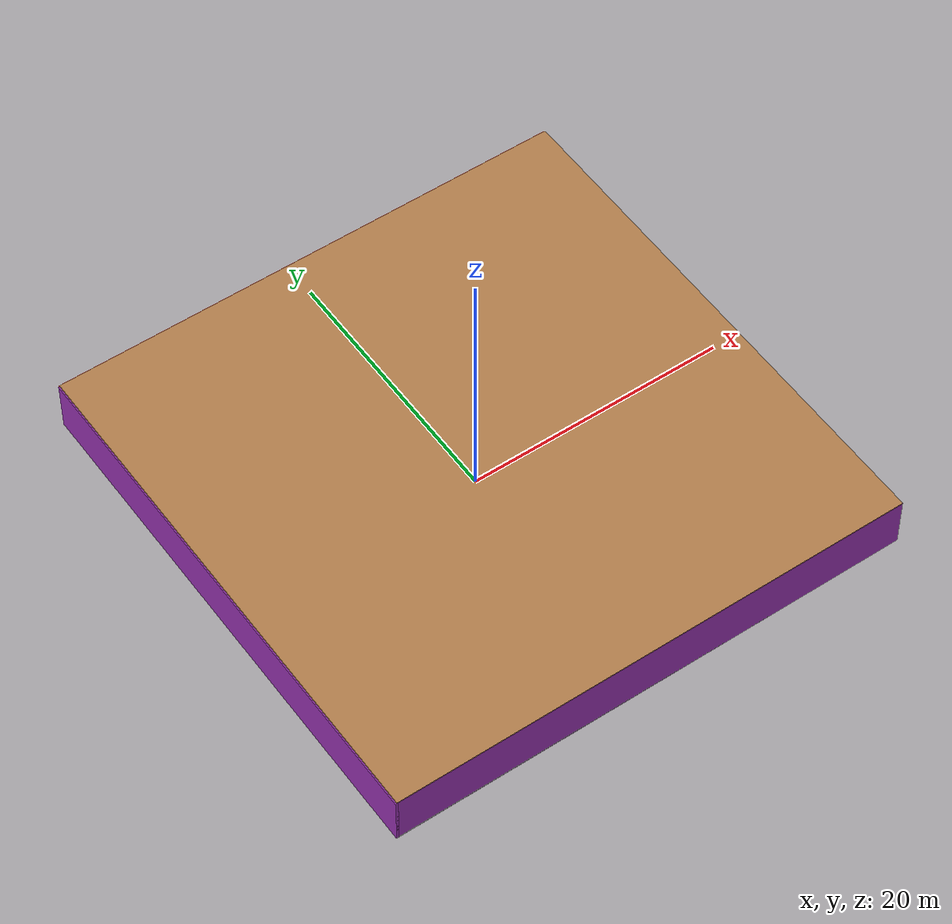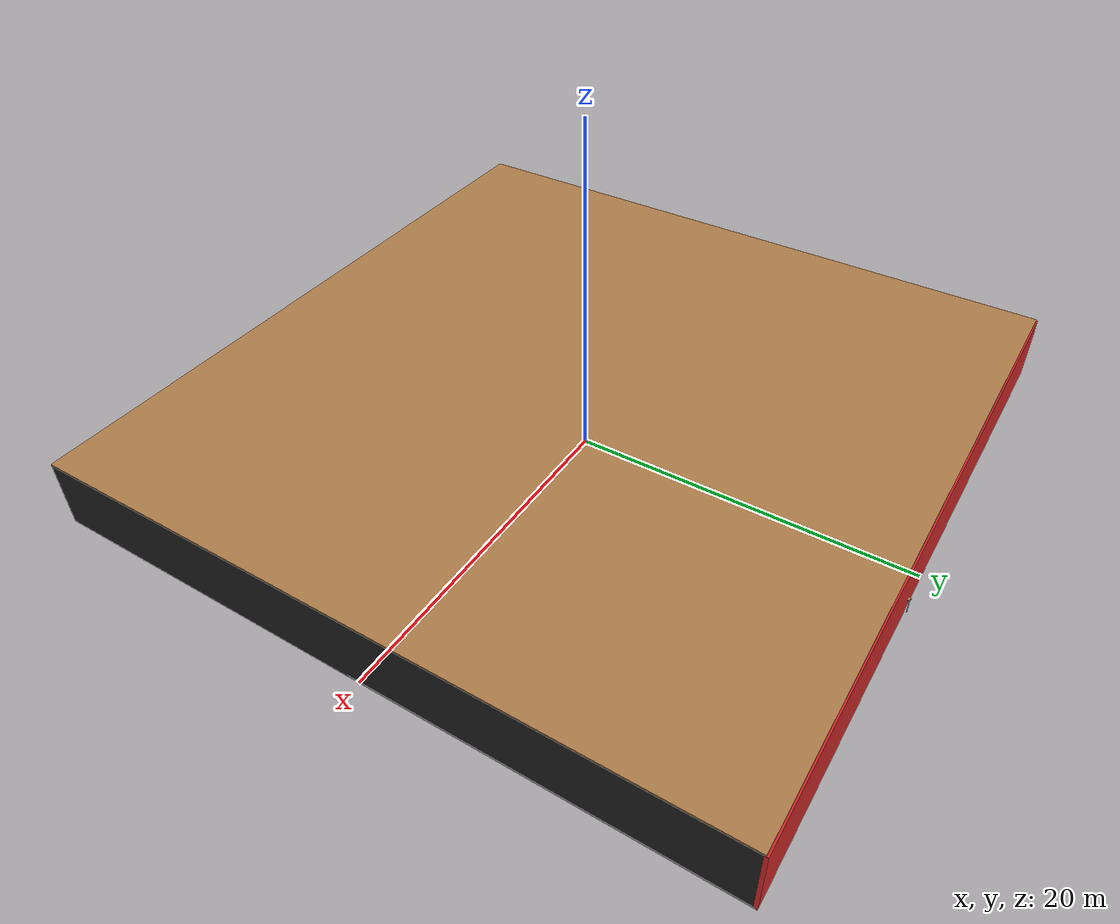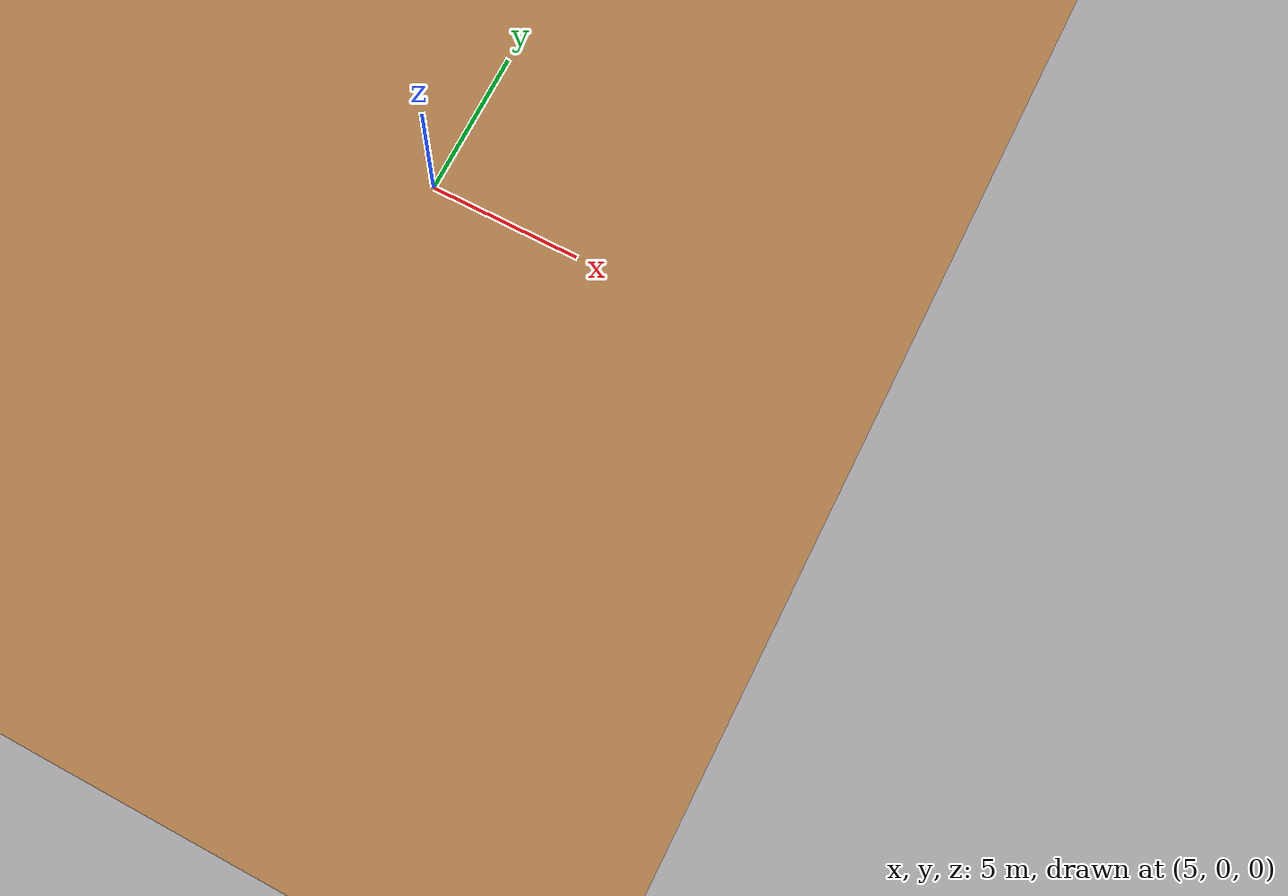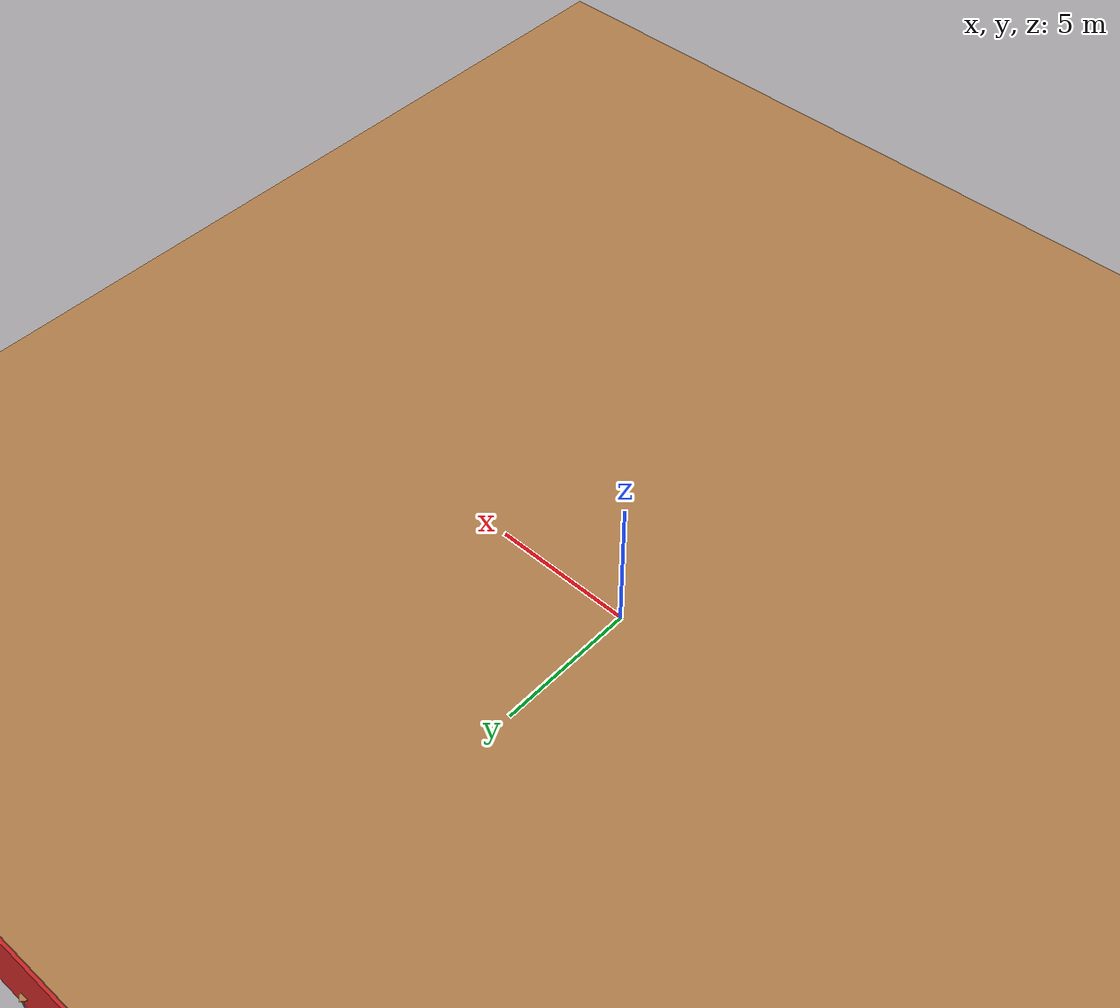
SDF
<sdf version="1.4">
 <world name="default">
  <physics type="ode">
   <max_step_size>0.001</max_step_size>
   <real_time_factor>1</real_time_factor>
   <real_time_update_rate>1000</real_time_update_rate>
   <gravity>0 0 -9.8</gravity>
  </physics>
  <scene><ambient>0.4 0.4 0.4 1</ambient><background>0.7 0.7 0.7 1</background><shadows>1</shadows></scene>
  <model name="Surrounding">
   <static>1</static>
   <link name="Ceiling">
    <collision name="Ceiling_Collision"><geometry><box><size>40 40 0.1</size></box></geometry></collision>
    <visual name="Ceiling_Visual">
     <geometry><box><size>40 40 0.1</size></box></geometry>
     <material>
      <script><uri>file://media/materials/scripts/gazebo.material</uri><name>Gazebo/WoodFloor</name></script>
     </material>
    </visual>
    <pose>0 0 4.05 0 0 0</pose>
   </link>
   <link name="Wall_South">
    <collision name="Wall_South_Collision">
     <geometry><box><size>40 0 4</size></box></geometry>
     <pose>0 0 2 0 -0 0</pose>
    </collision>
    <visual name="Wall_South_Visual">
     <pose>0 0 2 0 -0 0</pose>
     <geometry><box><size>40 0 4</size></box></geometry>
     <material>
      <script><uri>file://media/materials/scripts/gazebo.material</uri><name>Gazebo/PurpleGlow</name></script>
     </material>
    </visual>
    <velocity_decay><linear>0</linear><angular>0</angular></velocity_decay>
    <pose>0 -20 0 0 -0 0</pose>
   </link>
   <link name="Wall_East">
    <collision name="Wall_21_Collision">
     <geometry><box><size>40 0 4</size></box></geometry>
     <pose>0 0 2 0 -0 0</pose>
    </collision>
    <visual name="Wall_21_Visual">
     <pose>0 0 2 0 -0 0</pose>
     <geometry><box><size>40 0 4</size></box></geometry>
     <material>
      <script><uri>file://media/materials/scripts/gazebo.material</uri><name>Gazebo/Black</name></script>
     </material>
    </visual>
    <velocity_decay><linear>0</linear><angular>0</angular></velocity_decay>
    <pose>20 0 0 0 -0 1.5708</pose>
   </link>
   <link name="Wall_North">
    <collision name="Wall_22_Collision">
     <geometry><box><size>40 0.2 4</size></box></geometry>
     <pose>0 0 2 0 -0 0</pose>
    </collision>
    <visual name="Wall_22_Visual">
     <pose>0 0 2 0 -0 0</pose>
     <geometry><box><size>40 0.2 4</size></box></geometry>
     <material>
      <script><uri>file://media/materials/scripts/gazebo.material</uri><name>Gazebo/RedBright</name></script>
     </material>
    </visual>
    <velocity_decay><linear>0</linear><angular>0</angular></velocity_decay>
    <pose>0 20 0 0 -0 0</pose>
   </link>
   <link name="Wall_West">
    <collision name="Wall_23_Collision">
     <geometry><box><size>40 0.2 4</size></box></geometry>
     <pose>0 0 2 0 -0 0</pose>
    </collision>
    <visual name="Wall_23_Visual">
     <pose>0 0 2 0 -0 0</pose>
     <geometry><box><size>40 0.2 4</size></box></geometry>
     <material>
      <script><uri>file://media/materials/scripts/gazebo.material</uri><name>Gazebo/Purple</name></script>
     </material>
    </visual>
    <velocity_decay><linear>0</linear><angular>0</angular></velocity_decay>
    <pose>-20 0 0 0 0 -1.5708</pose>
   </link>
   <link name="Ground_link">
    <collision name="collision">
     <pose>0 0 .05 0 -0 0</pose>
     <geometry><box><size>40 40 0.1</size></box></geometry>
    </collision>
    <visual name="visual">
     <pose>0 0 .05 0 -0 0</pose>
     <geometry><box><size>40 40 0.1</size></box></geometry>
     <material>
      <script><uri>file://media/materials/scripts/gazebo.material</uri><name>Gazebo/WhiteGlow</name></script>
     </material>
    </visual>
   </link>
   <static>1</static>
  </model>
  <spherical_coordinates>
   <surface_model>EARTH_WGS84</surface_model>
   <latitude_deg>0</latitude_deg>
   <longitude_deg>0</longitude_deg>
   <elevation>0</elevation>
   <heading_deg>0</heading_deg>
  </spherical_coordinates>
  <light name="lightball_0" type="diffuse">
   <diffuse>0.8 0.8 0.8 1</diffuse>
   <specular>0.2 0.2 0.2 1</specular>
   <attenuation>
    <range>100</range>
    <constant>0.7</constant>
    <linear>0.01</linear>
    <quadratic>0.001</quadratic>
   </attenuation>
   <direction>-0.5 0.1 -0.9</direction>
   <pose>-6.66163034067 18.5280128321 2.4106128134 0 0 0</pose>
  </light>
  <light name="lightball_1" type="diffuse">
   <diffuse>0.8 0.8 0.8 1</diffuse>
   <specular>0.2 0.2 0.2 1</specular>
   <attenuation>
    <range>100</range>
    <constant>0.7</constant>
    <linear>0.01</linear>
    <quadratic>0.001</quadratic>
   </attenuation>
   <direction>-0.5 0.1 -0.9</direction>
   <pose>1.13767023144 3.13662151724 1.73429473343 0 0 0</pose>
  </light>
  <light name="lightball_2" type="diffuse">
   <diffuse>0.8 0.8 0.8 1</diffuse>
   <specular>0.2 0.2 0.2 1</specular>
   <attenuation>
    <range>100</range>
    <constant>0.7</constant>
    <linear>0.01</linear>
    <quadratic>0.001</quadratic>
   </attenuation>
   <direction>-0.5 0.1 -0.9</direction>
   <pose>-13.7967387627 1.21014496661 3.07836467346 0 0 0</pose>
  </light>
  <light name="lightball_3" type="diffuse">
   <diffuse>0.8 0.8 0.8 1</diffuse>
   <specular>0.2 0.2 0.2 1</specular>
   <attenuation>
    <range>100</range>
    <constant>0.7</constant>
    <linear>0.01</linear>
    <quadratic>0.001</quadratic>
   </attenuation>
   <direction>-0.5 0.1 -0.9</direction>
   <pose>-13.5391945057 -17.6758148129 1.51278612272 0 0 0</pose>
  </light>
  <light name="lightball_4" type="diffuse">
   <diffuse>0.8 0.8 0.8 1</diffuse>
   <specular>0.2 0.2 0.2 1</specular>
   <attenuation>
    <range>100</range>
    <constant>0.7</constant>
    <linear>0.01</linear>
    <quadratic>0.001</quadratic>
   </attenuation>
   <direction>-0.5 0.1 -0.9</direction>
   <pose>-5.5917665931 0.442139909359 0.530920242865 0 0 0</pose>
  </light>
  <light name="lightball_5" type="diffuse">
   <diffuse>0.8 0.8 0.8 1</diffuse>
   <specular>0.2 0.2 0.2 1</specular>
   <attenuation>
    <range>100</range>
    <constant>0.7</constant>
    <linear>0.01</linear>
    <quadratic>0.001</quadratic>
   </attenuation>
   <direction>-0.5 0.1 -0.9</direction>
   <pose>-12.7873196292 1.70671179967 1.9000593438 0 0 0</pose>
  </light>
  <light name="lightball_6" type="diffuse">
   <diffuse>0.8 0.8 0.8 1</diffuse>
   <specular>0.2 0.2 0.2 1</specular>
   <attenuation>
    <range>100</range>
    <constant>0.7</constant>
    <linear>0.01</linear>
    <quadratic>0.001</quadratic>
   </attenuation>
   <direction>-0.5 0.1 -0.9</direction>
   <pose>-0.866634497977 1.69912365485 1.59977055338 0 0 0</pose>
  </light>
  <light name="lightball_7" type="diffuse">
   <diffuse>0.8 0.8 0.8 1</diffuse>
   <specular>0.2 0.2 0.2 1</specular>
   <attenuation>
    <range>100</range>
    <constant>0.7</constant>
    <linear>0.01</linear>
    <quadratic>0.001</quadratic>
   </attenuation>
   <direction>-0.5 0.1 -0.9</direction>
   <pose>-19.3272910925 18.4718490308 1.64490286097 0 0 0</pose>
  </light>
  <include>
   <uri>model://robocup_3Dsim_goal</uri>
   <pose>-18.4586922704 3.0628825635 0 0 0 3.05977957527</pose>
  </include>
  <include>
   <uri>model://construction_cone</uri>
   <pose>-18.4192660373 10.6336928471 0 0 0 1.85910380606</pose>
  </include>
  <include>
   <uri>model://construction_cone</uri>
   <pose>-14.7655998186 7.27635300635 0 0 0 1.7900339351</pose>
  </include>
  <include>
   <uri>model://construction_cone</uri>
   <pose>-12.1139992456 0.856791256096 0 0 0 0.936096850996</pose>
  </include>
  <include>
   <uri>model://textured_shapes</uri>
   <pose>-8.9855125948 -3.00577617555 0 0 0 2.79866958678</pose>
  </include>
  <include>
   <uri>model://robocup_3Dsim_goal</uri>
   <pose>-7.93545072357 0.241006981701 0 0 0 1.53324665157</pose>
  </include>
  <include>
   <uri>model://robocup_3Dsim_goal</uri>
   <pose>-3.10434842478 -15.1245488314 0 0 0 1.95296846302</pose>
  </include>
  <include><uri>model://cabinet</uri><pose>-1.30489753432 -7.53457635425 0 0 0 2.72810061362</pose></include>
  <include><uri>model://cabinet</uri><pose>-3.51286848031 -0.22176664337 0 0 0 1.54033694555</pose></include>
  <include>
   <uri>model://robocup_3Dsim_goal</uri>
   <pose>0.35999616319 1.17243535755 0 0 0 2.54517850345</pose>
  </include>
  <include><uri>model://cabinet</uri><pose>2.34037153091 -16.7555701963 0 0 0 2.89220618882</pose></include>
  <include>
   <uri>model://robocup_3Dsim_goal</uri>
   <pose>4.22472158234 -3.59650946833 0 0 0 1.46577089931</pose>
  </include>
  <include>
   <uri>model://construction_cone</uri>
   <pose>3.22424817643 13.5106673055 0 0 0 2.09733905003</pose>
  </include>
  <include><uri>model://table</uri><pose>2.53065742439 19.4371105915 0 0 0 0.924721318518</pose></include>
  <include><uri>model://cabinet</uri><pose>6.74731685519 -10.7556594689 0 0 0 1.67869862017</pose></include>
  <include><uri>model://cabinet</uri><pose>10.6157218875 7.0834349871 0 0 0 2.89890839103</pose></include>
  <include><uri>model://cabinet</uri><pose>12.2886403033 -7.56624694843 0 0 0 0.791118763796</pose></include>
  <include>
   <uri>model://robocup_3Dsim_goal</uri>
   <pose>11.6278168171 -6.318718588 0 0 0 1.1137218019</pose>
  </include>
  <include>
   <uri>model://robocup_3Dsim_goal</uri>
   <pose>15.2411544 -1.99975683587 0 0 0 1.88357048025</pose>
  </include>
  <include><uri>model://cabinet</uri><pose>16.3384527393 6.8339947264 0 0 0 2.6949948056</pose></include>
  <include>
   <uri>model://robocup_3Dsim_goal</uri>
   <pose>19.1438958853 -14.2232519076 0 0 0 2.74595409311</pose>
  </include>
  <include><uri>model://cabinet</uri><pose>18.3756384714 8.51591608877 0 0 0 1.67572560813</pose></include>
 </world>
</sdf>

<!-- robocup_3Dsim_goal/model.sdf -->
<sdf version="1.5">
  <model name="robocup_3d_goal">
    <static>true</static>
    <link name="left_post">
      <pose>0 1.05 0.45 0 0 0</pose>
      <collision name="collision">
        <geometry>
          <cylinder>
            <radius>0.05</radius>
            <length>0.9</length>
          </cylinder>
        </geometry>
      </collision>
      <visual name="visual">
        <geometry>
          <cylinder>
            <radius>0.05</radius>
            <length>0.9</length>
          </cylinder>
        </geometry>
        <material>
          <script>
            <uri>file://media/materials/scripts/gazebo.material</uri>
            <name>Gazebo/ZincYellow</name>
          </script>
        </material>
      </visual>
    </link>
    <link name="left_support_horiz_lower">
      <pose>0.30 1.05 0.01 0 0 0</pose>
      <collision name="collision">
        <geometry>
          <box>
            <size>0.50 0.02 0.02</size>
          </box>
        </geometry>
      </collision>
      <visual name="visual">
        <geometry>
          <box>
            <size>0.50 0.02 0.02</size>
          </box>
        </geometry>
        <material>
          <script>
            <uri>file://media/materials/scripts/gazebo.material</uri>
            <name>Gazebo/White</name>
          </script>
        </material>
      </visual>
    </link>
    <link name="left_support_horiz_upper">
      <pose>0.30 1.05 0.79 0 0 0</pose>
      <collision name="collision">
        <geometry>
          <box>
            <size>0.50 0.02 0.02</size>
          </box>
        </geometry>
      </collision>
      <visual name="visual">
        <geometry>
          <box>
            <size>0.50 0.02 0.02</size>
          </box>
        </geometry>
        <material>
          <script>
            <uri>file://media/materials/scripts/gazebo.material</uri>
            <name>Gazebo/White</name>
          </script>
        </material>
      </visual>
    </link>
    <link name="left_support_vertical">
      <pose>0.56 1.05 0.4 0 1.5708 0</pose>
      <collision name="collision">
        <geometry>
          <box>
            <size>0.80 0.02 0.02</size>
          </box>
        </geometry>
      </collision>
      <visual name="visual">
        <geometry>
          <box>
            <size>0.80 0.02 0.02</size>
          </box>
        </geometry>
        <material>
          <script>
            <uri>file://media/materials/scripts/gazebo.material</uri>
            <name>Gazebo/White</name>
          </script>
        </material>
      </visual>
    </link>
    <link name="right_support_horiz_lower">
      <pose>0.30 -1.05 0.01 0 0 0</pose>
      <collision name="collision">
        <geometry>
          <box>
            <size>0.50 0.02 0.02</size>
          </box>
        </geometry>
      </collision>
      <visual name="visual">
        <geometry>
          <box>
            <size>0.50 0.02 0.02</size>
          </box>
        </geometry>
        <material>
          <script>
            <uri>file://media/materials/scripts/gazebo.material</uri>
            <name>Gazebo/White</name>
          </script>
        </material>
      </visual>
    </link>
    <link name="right_support_horiz_upper">
      <pose>0.30 -1.05 0.79 0 0 0</pose>
      <collision name="collision">
        <geometry>
          <box>
            <size>0.50 0.02 0.02</size>
          </box>
        </geometry>
      </collision>
      <visual name="visual">
        <geometry>
          <box>
            <size>0.50 0.02 0.02</size>
          </box>
        </geometry>
        <material>
          <script>
            <uri>file://media/materials/scripts/gazebo.material</uri>
            <name>Gazebo/White</name>
          </script>
        </material>
      </visual>
    </link>
    <link name="right_support_vertical">
      <pose>0.56 -1.05 0.4 0 1.5708 0</pose>
      <collision name="collision">
        <geometry>
          <box>
            <size>0.80 0.02 0.02</size>
          </box>
        </geometry>
      </collision>
      <visual name="visual">
        <geometry>
          <box>
            <size>0.80 0.02 0.02</size>
          </box>
        </geometry>
        <material>
          <script>
            <uri>file://media/materials/scripts/gazebo.material</uri>
            <name>Gazebo/White</name>
          </script>
        </material>
      </visual>
    </link>
    <link name="center_support_horiz_lower">
      <pose>0.56 0 0.01 0 1.5708 0</pose>
      <collision name="collision">
        <geometry>
          <box>
            <size>0.02 2.08 0.02</size>
          </box>
        </geometry>
      </collision>
      <visual name="visual">
        <geometry>
          <box>
            <size>0.02 2.08 0.02</size>
          </box>
        </geometry>
        <material>
          <script>
            <uri>file://media/materials/scripts/gazebo.material</uri>
            <name>Gazebo/White</name>
          </script>
        </material>
      </visual>
    </link>
    <link name="center_support_horiz_upper">
      <pose>0.56 0 0.79 0 1.5708 0</pose>
      <collision name="collision">
        <geometry>
          <box>
            <size>0.02 2.08 0.02</size>
          </box>
        </geometry>
      </collision>
      <visual name="visual">
        <geometry>
          <box>
            <size>0.02 2.08 0.02</size>
          </box>
        </geometry>
        <material>
          <script>
            <uri>file://media/materials/scripts/gazebo.material</uri>
            <name>Gazebo/White</name>
          </script>
        </material>
      </visual>
    </link>
    <link name="right_post">
      <pose>0 -1.05 0.45 0 0 0</pose>
      <collision name="collision">
        <geometry>
          <cylinder>
            <radius>0.05</radius>
            <length>0.9</length>
          </cylinder>
        </geometry>
      </collision>
      <visual name="visual">
        <geometry>
          <cylinder>
            <radius>0.05</radius>
            <length>0.9</length>
          </cylinder>
        </geometry>
        <material>
          <script>
            <uri>file://media/materials/scripts/gazebo.material</uri>
            <name>Gazebo/ZincYellow</name>
          </script>
        </material>
      </visual>
    </link>
    <link name="crossbar">
      <pose>0 0 0.85 1.57 1.57 0</pose>
      <collision name="collision">
        <geometry>
          <cylinder>
            <radius>0.05</radius>
            <length>2.0</length>
          </cylinder>
        </geometry>
      </collision>
      <visual name="visual">
        <geometry>
          <cylinder>
            <radius>0.05</radius>
            <length>2.0</length>
          </cylinder>
        </geometry>
        <material>
          <script>
            <uri>file://media/materials/scripts/gazebo.material</uri>
            <name>Gazebo/ZincYellow</name>
          </script>
        </material>
      </visual>
    </link>
    <link name="center_net">
      <pose>0.56 0 0.40 0 0 0</pose>
      <collision name="collision">
        <geometry>
          <box>
            <size>0.01 2.1 0.80</size>
          </box>
        </geometry>
      </collision>
      <visual name="visual">
        <geometry>
          <box>
            <size>0.01 2.1 0.80</size>
          </box>
        </geometry>
        <material>
          <script>
            <uri>model://../model_source/models/robocup09_spl_field/materials/scripts/</uri>
            <uri>model://../model_source/models/robocup09_spl_field/materials/textures/</uri>
            <name>RoboCup/Net</name>
          </script>
        </material>
      </visual>
    </link>
    <link name="left_net">
      <pose>0.30 1.05 0.40 0 0 0</pose>
      <collision name="collision">
        <geometry>
          <box>
            <size>0.50 0.01 0.76</size>
          </box>
        </geometry>
      </collision>
      <visual name="visual">
        <geometry>
          <box>
            <size>0.50 0.01 0.76</size>
          </box>
        </geometry>
        <material>
          <script>
            <uri>model://../model_source/models/robocup09_spl_field/materials/scripts/</uri>
            <uri>model://../model_source/models/robocup09_spl_field/materials/textures/</uri>
            <name>RoboCup/Net</name>
          </script>
        </material>
      </visual>
    </link>
    <link name="right_net">
      <pose>0.30 -1.05 0.40 0 0 0</pose>
      <collision name="collision">
        <geometry>
          <box>
            <size>0.50 0.01 0.76</size>
          </box>
        </geometry>
      </collision>
      <visual name="visual">
        <geometry>
          <box>
            <size>0.50 0.01 0.76</size>
          </box>
        </geometry>
        <material>
          <script>
            <uri>model://../model_source/models/robocup09_spl_field/materials/scripts/</uri>
            <uri>model://../model_source/models/robocup09_spl_field/materials/textures/</uri>
            <name>RoboCup/Net</name>
          </script>
        </material>
      </visual>
    </link>
  </model>
</sdf>

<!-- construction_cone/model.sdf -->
<sdf version="1.5">
  <model name="Construction Cone">
    <link name="link">
      <collision name="collision">
        <geometry>
          <mesh>
            <scale>10 10 10</scale>
            <uri>file://isr-testbed/construction_cone/meshes/construction_cone.dae</uri>
          </mesh>
        </geometry>
      </collision>
      <visual name="visual">
        <geometry>
          <mesh>
            <scale>10 10 10</scale>
            <uri>file://isr-testbed/construction_cone/meshes/construction_cone.dae</uri>
          </mesh>
        </geometry>
      </visual>
    </link>
  </model>
</sdf>

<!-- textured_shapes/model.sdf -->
<sdf version="1.6">
  <model name="textured_shapes">
    <pose>0 0 0.5 0 0 0</pose>
    <link name="box">
      <pose>0 -1.5 0 0 0 0</pose>
      <collision name="collision">
        <geometry>
          <box>
            <size>1 1 1</size>
          </box>
        </geometry>
      </collision>
      <visual name="visual">
        <geometry>
          <box>
            <size>1 1 1</size>
          </box>
        </geometry>
        <material>
          <script>
            <uri>model://../model_source/models/textured_shapes/materials/scripts</uri>
            <uri>model://../model_source/models/textured_shapes/materials/textures</uri>
            <name>TexturedShape/Squares</name>
          </script>
        </material>
      </visual>
    </link>
    <link name="sphere">
      <collision name="collision">
        <geometry>
          <sphere>
            <radius>0.5</radius>
          </sphere>
        </geometry>
      </collision>
      <visual name="visual">
        <geometry>
          <sphere>
            <radius>0.5</radius>
          </sphere>
        </geometry>
        <material>
          <script>
            <uri>model://../model_source/models/textured_shapes/materials/scripts</uri>
            <uri>model://../model_source/models/textured_shapes/materials/textures</uri>
            <name>TexturedShape/Squares</name>
          </script>
        </material>
      </visual>
    </link>
    <link name="cylinder">
      <pose>0 1.5 0 0 0 0</pose>
      <collision name="collision">
        <geometry>
          <cylinder>
            <radius>0.5</radius>
            <length>1</length>
          </cylinder>
        </geometry>
      </collision>
      <visual name="visual">
        <geometry>
          <cylinder>
            <radius>0.5</radius>
            <length>1</length>
          </cylinder>
        </geometry>
        <material>
          <script>
            <uri>model://../model_source/models/textured_shapes/materials/scripts</uri>
            <uri>model://../model_source/models/textured_shapes/materials/textures</uri>
            <name>TexturedShape/Squares</name>
          </script>
        </material>
      </visual>
    </link>
  </model>
</sdf>

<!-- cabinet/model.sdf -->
<sdf version="1.5">
  <model name="cabinet">
    <static>true</static>
    <link name="cabinet_bottom_plate">
      <inertial>
        <pose>0 0 -1 0 0 0</pose>
        <inertia>
          <ixx>2.050000</ixx>
          <ixy>0</ixy>
          <ixz>0</ixz>
          <iyy>2.050000</iyy>
          <iyz>0</iyz>
          <izz>2.050000</izz>
        </inertia>
        <mass>25.000000</mass>
      </inertial>
      <collision name="cabinet_bottom_plate_geom">
        <pose>0 0 0.010000 0 0 0</pose>
        <geometry>
          <box>
            <size>0.450000 0.450000 0.020000</size>
          </box>
        </geometry>
      </collision>
      <visual name="cabinet_bottom_plate_geom_visual">
        <pose>0 0 0.010000 0 0 0</pose>
        <geometry>
          <box>
            <size>0.450000 0.450000 0.020000</size>
          </box>
        </geometry>
        <material>
          <script>
            <uri>model://media/materials/scripts/gazebo.material</uri>
            <name>Gazebo/Wood</name>
          </script>
        </material>
      </visual>
      <collision name="cabinet_bottom_plate_geom_cabinet_back_plate">
        <pose>0.235000 0 0.510000 0 0 0</pose>
        <geometry>
          <box>
            <size>0.020000 0.450000 1.020000</size>
          </box>
        </geometry>
      </collision>
      <visual name="cabinet_bottom_plate_geom_cabinet_back_plate_visual">
        <pose>0.235000 0 0.510000 0 0 0</pose>
        <geometry>
          <box>
            <size>0.020000 0.450000 1.020000</size>
          </box>
        </geometry>
        <material>
          <script>
            <uri>model://media/materials/scripts/gazebo.material</uri>
            <name>Gazebo/Wood</name>
          </script>
        </material>
      </visual>
      <collision name="cabinet_bottom_plate_geom_cabinet_left_plate">
        <pose>0 0.235000 0.510000 0 0 0</pose>
        <geometry>
          <box>
            <size>0.450000 0.020000 1.020000</size>
          </box>
        </geometry>
      </collision>
      <visual name="cabinet_bottom_plate_geom_cabinet_left_plate_visual">
        <pose>0 0.235000 0.510000 0 0 0</pose>
        <geometry>
          <box>
            <size>0.450000 0.020000 1.020000</size>
          </box>
        </geometry>
        <material>
          <script>
            <uri>model://media/materials/scripts/gazebo.material</uri>
            <name>Gazebo/Wood</name>
          </script>
        </material>
      </visual>
      <collision name="cabinet_bottom_plate_geom_cabinet_middle_plate">
        <pose>0 0 0.510000 0 0 0</pose>
        <geometry>
          <box>
            <size>0.450000 0.450000 0.020000</size>
          </box>
        </geometry>
      </collision>
      <visual name="cabinet_bottom_plate_geom_cabinet_middle_plate_visual">
        <pose>0 0 0.510000 0 0 0</pose>
        <geometry>
          <box>
            <size>0.450000 0.450000 0.020000</size>
          </box>
        </geometry>
        <material>
          <script>
            <uri>model://media/materials/scripts/gazebo.material</uri>
            <name>Gazebo/Wood</name>
          </script>
        </material>
      </visual>
      <collision name="cabinet_bottom_plate_geom_cabinet_right_plate">
        <pose>0 -0.235000 0.510000 0 0 0</pose>
        <geometry>
          <box>
            <size>0.450000 0.020000 1.020000</size>
          </box>
        </geometry>
      </collision>
      <visual name="cabinet_bottom_plate_geom_cabinet_right_plate_visual">
        <pose>0 -0.235000 0.510000 0 0 0</pose>
        <geometry>
          <box>
            <size>0.450000 0.020000 1.020000</size>
          </box>
        </geometry>
        <material>
          <script>
            <uri>model://media/materials/scripts/gazebo.material</uri>
            <name>Gazebo/Wood</name>
          </script>
        </material>
      </visual>
      <collision name="cabinet_bottom_plate_geom_cabinet_top_plate">
        <pose>0 0 1.010000 0 0 0</pose>
        <geometry>
          <box>
            <size>0.450000 0.450000 0.020000</size>
          </box>
        </geometry>
      </collision>
      <visual name="cabinet_bottom_plate_geom_cabinet_top_plate_visual">
        <pose>0 0 1.010000 0 0 0</pose>
        <geometry>
          <box>
            <size>0.450000 0.450000 0.020000</size>
          </box>
        </geometry>
        <material>
          <script>
            <uri>model://media/materials/scripts/gazebo.material</uri>
            <name>Gazebo/Wood</name>
          </script>
        </material>
      </visual>
    </link>
  </model>
</sdf>

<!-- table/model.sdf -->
<sdf version="1.5">
  <model name="table">
    <static>true</static>
    <link name="link">
      <collision name="surface">
        <pose>0 0 1.0 0 0 0</pose>
        <geometry>
          <box>
            <size>1.5 0.8 0.03</size>
          </box>
        </geometry>
        <surface>
          <friction>
            <ode>
              <mu>0.6</mu>
              <mu2>0.6</mu2>
            </ode>
          </friction>
        </surface>
      </collision>
      <visual name="visual1">
        <pose>0 0 1.0 0 0 0</pose>
        <geometry>
          <box>
            <size>1.5 0.8 0.03</size>
          </box>
        </geometry>
        <material>
          <script>
            <uri>model://media/materials/scripts/gazebo.material</uri>
            <name>Gazebo/Wood</name>
          </script>
        </material>
      </visual>
      <collision name="front_left_leg">
        <pose>0.68 0.38 0.5 0 0 0</pose>
        <geometry>
          <cylinder>
            <radius>0.02</radius>
            <length>1.0</length>
          </cylinder>
        </geometry>
      </collision>
      <visual name="front_left_leg">
        <pose>0.68 0.38 0.5 0 0 0</pose>
        <geometry>
          <cylinder>
            <radius>0.02</radius>
            <length>1.0</length>
          </cylinder>
        </geometry>
        <material>
          <script>
            <uri>model://media/materials/scripts/gazebo.material</uri>
            <name>Gazebo/Grey</name>
          </script>
        </material>
      </visual>
      <collision name="front_right_leg">
        <pose>0.68 -0.38 0.5 0 0 0</pose>
        <geometry>
          <cylinder>
            <radius>0.02</radius>
            <length>1.0</length>
          </cylinder>
        </geometry>
      </collision>
      <visual name="front_right_leg">
        <pose>0.68 -0.38 0.5 0 0 0</pose>
        <geometry>
          <cylinder>
            <radius>0.02</radius>
            <length>1.0</length>
          </cylinder>
        </geometry>
        <material>
          <script>
            <uri>model://media/materials/scripts/gazebo.material</uri>
            <name>Gazebo/Grey</name>
          </script>
        </material>
      </visual>
      <collision name="back_right_leg">
        <pose>-0.68 -0.38 0.5 0 0 0</pose>
        <geometry>
          <cylinder>
            <radius>0.02</radius>
            <length>1.0</length>
          </cylinder>
        </geometry>
      </collision>
      <visual name="back_right_leg">
        <pose>-0.68 -0.38 0.5 0 0 0</pose>
        <geometry>
          <cylinder>
            <radius>0.02</radius>
            <length>1.0</length>
          </cylinder>
        </geometry>
        <material>
          <script>
            <uri>model://media/materials/scripts/gazebo.material</uri>
            <name>Gazebo/Grey</name>
          </script>
        </material>
      </visual>
      <collision name="back_left_leg">
        <pose>-0.68 0.38 0.5 0 0 0</pose>
        <geometry>
          <cylinder>
            <radius>0.02</radius>
            <length>1.0</length>
          </cylinder>
        </geometry>
      </collision>
      <visual name="back_left_leg">
        <pose>-0.68 0.38 0.5 0 0 0</pose>
        <geometry>
          <cylinder>
            <radius>0.02</radius>
            <length>1.0</length>
          </cylinder>
        </geometry>
        <material>
          <script>
            <uri>model://media/materials/scripts/gazebo.material</uri>
            <name>Gazebo/Grey</name>
          </script>
        </material>
      </visual>
    </link>
  </model>
</sdf>
